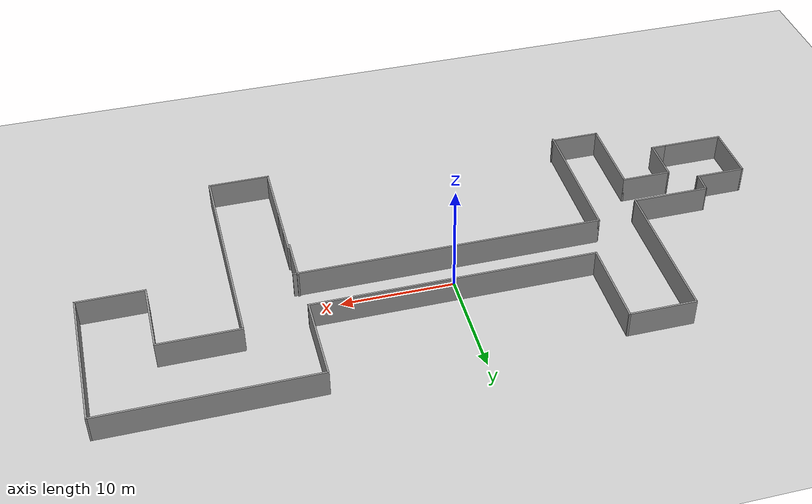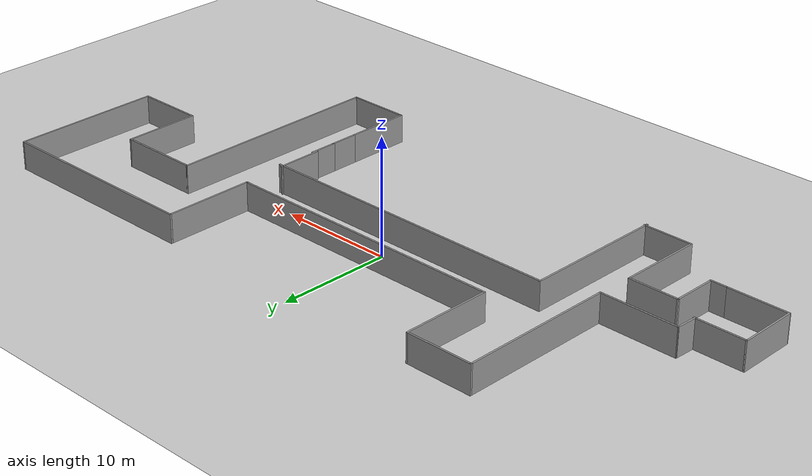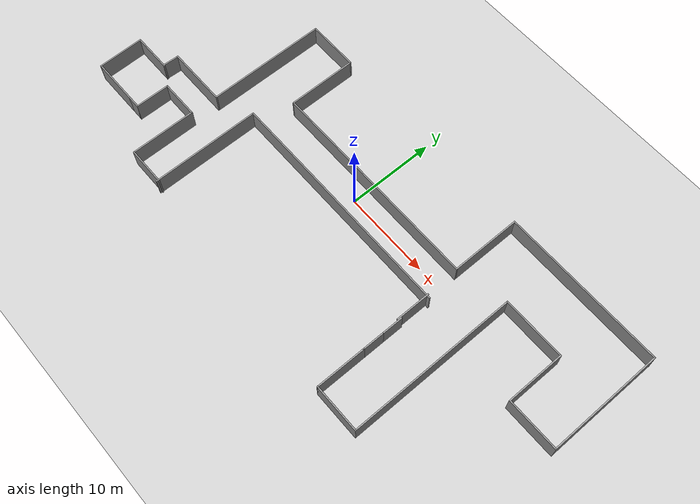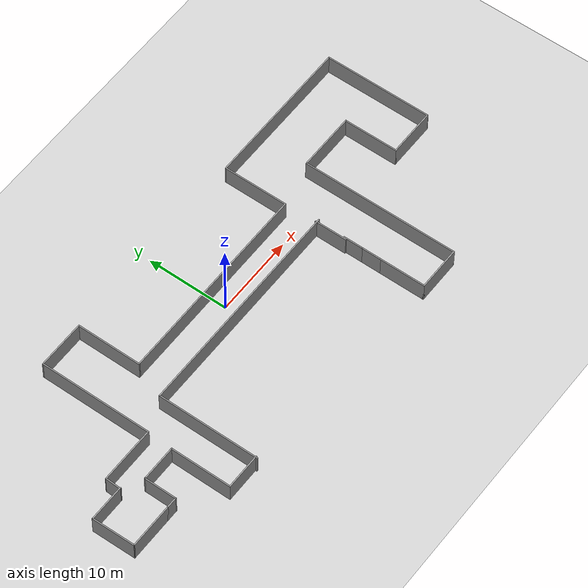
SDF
<sdf version="1.7">
 <world name="empty_world">
  <light name="sun" type="directional">
   <pose>0 0 10 0 -0 0</pose>
   <diffuse>0.8 0.8 0.8 1</diffuse>
   <specular>0.2 0.2 0.2 1</specular>
   <attenuation>
    <range>1000</range>
    <constant>0.9</constant>
    <linear>0.01</linear>
    <quadratic>0.001</quadratic>
   </attenuation>
   <direction>-0.5 0.1 -0.9</direction>
   <spot><inner_angle>0</inner_angle><outer_angle>0</outer_angle><falloff>0</falloff></spot>
  </light>
  <model name="ground_plane">
   <static>1</static>
   <link name="link">
    <collision name="collision">
     <geometry><plane><normal>0 0 1</normal><size>100 100</size></plane></geometry>
     <surface>
      <contact><collide_bitmask>65535</collide_bitmask></contact>
      <friction><ode><mu>100</mu><mu2>50</mu2></ode></friction>
     </surface>
    </collision>
    <visual name="visual">
     <cast_shadows>0</cast_shadows>
     <geometry><plane><normal>0 0 1</normal><size>100 100</size></plane></geometry>
     <material>
      <script><uri>file://media/materials/scripts/gazebo.material</uri><name>Gazebo/Grey</name></script>
     </material>
    </visual>
   </link>
  </model>
  <gravity>0 0 -9.8</gravity>
  <magnetic_field>6e-06 2.3e-05 -4.2e-05</magnetic_field>
  <atmosphere type="adiabatic"/>
  <physics type="ode">
   <max_step_size>0.001</max_step_size>
   <real_time_factor>1</real_time_factor>
   <real_time_update_rate>1000</real_time_update_rate>
  </physics>
  <scene><ambient>0.4 0.4 0.4 1</ambient><background>0.7 0.7 0.7 1</background><shadows>1</shadows></scene>
  <spherical_coordinates>
   <surface_model>EARTH_WGS84</surface_model>
   <latitude_deg>0</latitude_deg>
   <longitude_deg>0</longitude_deg>
   <elevation>0</elevation>
   <heading_deg>0</heading_deg>
  </spherical_coordinates>
  <model name="tacktry.world">
   <pose>1.17971 -3.02863 0 0 -0 0</pose>
   <link name="Wall_0">
    <collision name="Wall_0_Collision">
     <geometry><box><size>2.5 0.15 2.5</size></box></geometry>
     <pose>0 0 1.25 0 -0 0</pose>
    </collision>
    <visual name="Wall_0_Visual">
     <pose>0 0 1.25 0 -0 0</pose>
     <geometry><box><size>2.5 0.15 2.5</size></box></geometry>
     <material>
      <script><uri>file://media/materials/scripts/gazebo.material</uri><name>Gazebo/Grey</name></script>
      <ambient>1 1 1 1</ambient>
     </material>
     <meta><layer>0</layer></meta>
    </visual>
    <pose>12.1197 -3.675 0 0 -0 -1.5708</pose>
   </link>
   <link name="Wall_1">
    <collision name="Wall_1_Collision">
     <geometry><box><size>2.5 0.15 2.5</size></box></geometry>
     <pose>0 0 1.25 0 -0 0</pose>
    </collision>
    <visual name="Wall_1_Visual">
     <pose>0 0 1.25 0 -0 0</pose>
     <geometry><box><size>2.5 0.15 2.5</size></box></geometry>
     <material>
      <script><uri>file://media/materials/scripts/gazebo.material</uri><name>Gazebo/Grey</name></script>
      <ambient>1 1 1 1</ambient>
     </material>
     <meta><layer>0</layer></meta>
    </visual>
    <pose>12.1197 -6.025 0 0 -0 -1.5708</pose>
   </link>
   <link name="Wall_10">
    <collision name="Wall_10_Collision">
     <geometry><box><size>8 0.15 2.5</size></box></geometry>
     <pose>0 0 1.25 0 -0 0</pose>
    </collision>
    <visual name="Wall_10_Visual">
     <pose>0 0 1.25 0 -0 0</pose>
     <geometry><box><size>8 0.15 2.5</size></box></geometry>
     <material>
      <script><uri>file://media/materials/scripts/gazebo.material</uri><name>Gazebo/Grey</name></script>
      <ambient>1 1 1 1</ambient>
     </material>
     <meta><layer>0</layer></meta>
    </visual>
    <pose>11.8197 8.875 0 0 -0 -1.5708</pose>
   </link>
   <link name="Wall_11">
    <collision name="Wall_11_Collision">
     <geometry><box><size>25.25 0.15 2.5</size></box></geometry>
     <pose>0 0 1.25 0 -0 0</pose>
    </collision>
    <visual name="Wall_11_Visual">
     <pose>0 0 1.25 0 -0 0</pose>
     <geometry><box><size>25.25 0.15 2.5</size></box></geometry>
     <material>
      <script><uri>file://media/materials/scripts/gazebo.material</uri><name>Gazebo/Grey</name></script>
      <ambient>1 1 1 1</ambient>
     </material>
     <meta><layer>0</layer></meta>
    </visual>
    <pose>-0.730272 4.95 0 0 -0 3.14159</pose>
   </link>
   <link name="Wall_12">
    <collision name="Wall_12_Collision">
     <geometry><box><size>8 0.15 2.5</size></box></geometry>
     <pose>0 0 1.25 0 -0 0</pose>
    </collision>
    <visual name="Wall_12_Visual">
     <pose>0 0 1.25 0 -0 0</pose>
     <geometry><box><size>8 0.15 2.5</size></box></geometry>
     <material>
      <script><uri>file://media/materials/scripts/gazebo.material</uri><name>Gazebo/Grey</name></script>
      <ambient>1 1 1 1</ambient>
     </material>
     <meta><layer>0</layer></meta>
    </visual>
    <pose>-13.2803 8.875 0 0 -0 1.5708</pose>
   </link>
   <link name="Wall_13">
    <collision name="Wall_13_Collision">
     <geometry><box><size>6.01768 0.15 2.5</size></box></geometry>
     <pose>0 0 1.25 0 -0 0</pose>
    </collision>
    <visual name="Wall_13_Visual">
     <pose>0 0 1.25 0 -0 0</pose>
     <geometry><box><size>6.01768 0.15 2.5</size></box></geometry>
     <material>
      <script><uri>file://media/materials/scripts/gazebo.material</uri><name>Gazebo/Grey</name></script>
      <ambient>1 1 1 1</ambient>
     </material>
     <meta><layer>0</layer></meta>
    </visual>
    <pose>-16.2141 12.8 0 0 -0 3.14159</pose>
   </link>
   <link name="Wall_18">
    <collision name="Wall_18_Collision">
     <geometry><box><size>27.5 0.15 2.5</size></box></geometry>
     <pose>0 0 1.25 0 -0 0</pose>
    </collision>
    <visual name="Wall_18_Visual">
     <pose>0 0 1.25 0 -0 0</pose>
     <geometry><box><size>27.5 0.15 2.5</size></box></geometry>
     <material>
      <script><uri>file://media/materials/scripts/gazebo.material</uri><name>Gazebo/Grey</name></script>
      <ambient>1 1 1 1</ambient>
     </material>
     <meta><layer>0</layer></meta>
    </visual>
    <pose>-1.35527 0.917618 0 0 -0 0</pose>
   </link>
   <link name="Wall_2">
    <collision name="Wall_2_Collision">
     <geometry><box><size>5.75 0.15 2.5</size></box></geometry>
     <pose>0 0 1.25 0 -0 0</pose>
    </collision>
    <visual name="Wall_2_Visual">
     <pose>0 0 1.25 0 -0 0</pose>
     <geometry><box><size>5.75 0.15 2.5</size></box></geometry>
     <material>
      <script><uri>file://media/materials/scripts/gazebo.material</uri><name>Gazebo/Grey</name></script>
      <ambient>1 1 1 1</ambient>
     </material>
     <meta><layer>0</layer></meta>
    </visual>
    <pose>12.1197 -10 0 0 -0 -1.5708</pose>
   </link>
   <link name="Wall_20">
    <collision name="Wall_20_Collision">
     <geometry><box><size>13.75 0.15 2.5</size></box></geometry>
     <pose>0 0 1.25 0 -0 0</pose>
    </collision>
    <visual name="Wall_20_Visual">
     <pose>0 0 1.25 0 -0 0</pose>
     <geometry><box><size>13.75 0.15 2.5</size></box></geometry>
     <material>
      <script><uri>file://media/materials/scripts/gazebo.material</uri><name>Gazebo/Grey</name></script>
      <ambient>1 1 1 1</ambient>
     </material>
     <meta><layer>0</layer></meta>
    </visual>
    <pose>-19.1479 6 0 0 -0 -1.5708</pose>
   </link>
   <link name="Wall_21">
    <collision name="Wall_21_Collision">
     <geometry><box><size>7 0.15 2.5</size></box></geometry>
     <pose>0 0 1.25 0 -0 0</pose>
    </collision>
    <visual name="Wall_21_Visual">
     <pose>0 0 1.25 0 -0 0</pose>
     <geometry><box><size>7 0.15 2.5</size></box></geometry>
     <material>
      <script><uri>file://media/materials/scripts/gazebo.material</uri><name>Gazebo/Grey</name></script>
      <ambient>1 1 1 1</ambient>
     </material>
     <meta><layer>0</layer></meta>
    </visual>
    <pose>-22.5729 -0.8 0 0 -0 3.14159</pose>
   </link>
   <link name="Wall_22">
    <collision name="Wall_22_Collision">
     <geometry><box><size>1.95413 0.15 2.5</size></box></geometry>
     <pose>0 0 1.25 0 -0 0</pose>
    </collision>
    <visual name="Wall_22_Visual">
     <pose>0 0 1.25 0 -0 0</pose>
     <geometry><box><size>1.95413 0.15 2.5</size></box></geometry>
     <material>
      <script><uri>file://media/materials/scripts/gazebo.material</uri><name>Gazebo/Grey</name></script>
      <ambient>1 1 1 1</ambient>
     </material>
     <meta><layer>0</layer></meta>
    </visual>
    <pose>-26.0333 -1.70137 0 0 -0 -1.61003</pose>
   </link>
   <link name="Wall_23">
    <collision name="Wall_23_Collision">
     <geometry><box><size>4.5 0.15 2.5</size></box></geometry>
     <pose>0 0 1.25 0 -0 0</pose>
    </collision>
    <visual name="Wall_23_Visual">
     <pose>0 0 1.25 0 -0 0</pose>
     <geometry><box><size>4.5 0.15 2.5</size></box></geometry>
     <material>
      <script><uri>file://media/materials/scripts/gazebo.material</uri><name>Gazebo/Grey</name></script>
      <ambient>1 1 1 1</ambient>
     </material>
     <meta><layer>0</layer></meta>
    </visual>
    <pose>-28.173 -2.60275 0 0 -0 3.14159</pose>
   </link>
   <link name="Wall_24">
    <collision name="Wall_24_Collision">
     <geometry><box><size>5.29774 0.15 2.5</size></box></geometry>
     <pose>0 0 1.25 0 -0 0</pose>
    </collision>
    <visual name="Wall_24_Visual">
     <pose>0 0 1.25 0 -0 0</pose>
     <geometry><box><size>5.29774 0.15 2.5</size></box></geometry>
     <material>
      <script><uri>file://media/materials/scripts/gazebo.material</uri><name>Gazebo/Grey</name></script>
      <ambient>1 1 1 1</ambient>
     </material>
     <meta><layer>0</layer></meta>
    </visual>
    <pose>-30.3833 -5.17637 0 0 -0 -1.55705</pose>
   </link>
   <link name="Wall_25">
    <collision name="Wall_25_Collision">
     <geometry><box><size>5.5 0.15 2.5</size></box></geometry>
     <pose>0 0 1.25 0 -0 0</pose>
    </collision>
    <visual name="Wall_25_Visual">
     <pose>0 0 1.25 0 -0 0</pose>
     <geometry><box><size>5.5 0.15 2.5</size></box></geometry>
     <material>
      <script><uri>file://media/materials/scripts/gazebo.material</uri><name>Gazebo/Grey</name></script>
      <ambient>1 1 1 1</ambient>
     </material>
     <meta><layer>0</layer></meta>
    </visual>
    <pose>-27.673 -7.75 0 0 -0 0</pose>
   </link>
   <link name="Wall_26">
    <collision name="Wall_26_Collision">
     <geometry><box><size>1.5 0.15 2.5</size></box></geometry>
     <pose>0 0 1.25 0 -0 0</pose>
    </collision>
    <visual name="Wall_26_Visual">
     <pose>0 0 1.25 0 -0 0</pose>
     <geometry><box><size>1.5 0.15 2.5</size></box></geometry>
     <material>
      <script><uri>file://media/materials/scripts/gazebo.material</uri><name>Gazebo/Grey</name></script>
      <ambient>1 1 1 1</ambient>
     </material>
     <meta><layer>0</layer></meta>
    </visual>
    <pose>-24.3229 -7.75 0 0 -0 0</pose>
   </link>
   <link name="Wall_27">
    <collision name="Wall_27_Collision">
     <geometry><box><size>4 0.15 2.5</size></box></geometry>
     <pose>0 0 1.25 0 -0 0</pose>
    </collision>
    <visual name="Wall_27_Visual">
     <pose>0 0 1.25 0 -0 0</pose>
     <geometry><box><size>4 0.15 2.5</size></box></geometry>
     <material>
      <script><uri>file://media/materials/scripts/gazebo.material</uri><name>Gazebo/Grey</name></script>
      <ambient>1 1 1 1</ambient>
     </material>
     <meta><layer>0</layer></meta>
    </visual>
    <pose>-23.6479 -5.825 0 0 -0 1.5708</pose>
   </link>
   <link name="Wall_28">
    <collision name="Wall_28_Collision">
     <geometry><box><size>4.5 0.15 2.5</size></box></geometry>
     <pose>0 0 1.25 0 -0 0</pose>
    </collision>
    <visual name="Wall_28_Visual">
     <pose>0 0 1.25 0 -0 0</pose>
     <geometry><box><size>4.5 0.15 2.5</size></box></geometry>
     <material>
      <script><uri>file://media/materials/scripts/gazebo.material</uri><name>Gazebo/Grey</name></script>
      <ambient>1 1 1 1</ambient>
     </material>
     <meta><layer>0</layer></meta>
    </visual>
    <pose>-21.473 -3.9 0 0 -0 0</pose>
   </link>
   <link name="Wall_29">
    <collision name="Wall_29_Collision">
     <geometry><box><size>7.5 0.15 2.5</size></box></geometry>
     <pose>0 0 1.25 0 -0 0</pose>
    </collision>
    <visual name="Wall_29_Visual">
     <pose>0 0 1.25 0 -0 0</pose>
     <geometry><box><size>7.5 0.15 2.5</size></box></geometry>
     <material>
      <script><uri>file://media/materials/scripts/gazebo.material</uri><name>Gazebo/Grey</name></script>
      <ambient>1 1 1 1</ambient>
     </material>
     <meta><layer>0</layer></meta>
    </visual>
    <pose>-19.298 -7.575 0 0 -0 -1.5708</pose>
   </link>
   <link name="Wall_3">
    <collision name="Wall_3_Collision">
     <geometry><box><size>5.5 0.15 2.5</size></box></geometry>
     <pose>0 0 1.25 0 -0 0</pose>
    </collision>
    <visual name="Wall_3_Visual">
     <pose>0 0 1.25 0 -0 0</pose>
     <geometry><box><size>5.5 0.15 2.5</size></box></geometry>
     <material>
      <script><uri>file://media/materials/scripts/gazebo.material</uri><name>Gazebo/Grey</name></script>
      <ambient>1 1 1 1</ambient>
     </material>
     <meta><layer>0</layer></meta>
    </visual>
    <pose>14.7947 -12.8 0 0 -0 0</pose>
   </link>
   <link name="Wall_30">
    <collision name="Wall_30_Collision">
     <geometry><box><size>4.5 0.15 2.5</size></box></geometry>
     <pose>0 0 1.25 0 -0 0</pose>
    </collision>
    <visual name="Wall_30_Visual">
     <pose>0 0 1.25 0 -0 0</pose>
     <geometry><box><size>4.5 0.15 2.5</size></box></geometry>
     <material>
      <script><uri>file://media/materials/scripts/gazebo.material</uri><name>Gazebo/Grey</name></script>
      <ambient>1 1 1 1</ambient>
     </material>
     <meta><layer>0</layer></meta>
    </visual>
    <pose>-17.1229 -11.25 0 0 -0 0</pose>
   </link>
   <link name="Wall_32">
    <collision name="Wall_32_Collision">
     <geometry><box><size>12.5 0.15 2.5</size></box></geometry>
     <pose>0 0 1.25 0 -0 0</pose>
    </collision>
    <visual name="Wall_32_Visual">
     <pose>0 0 1.25 0 -0 0</pose>
     <geometry><box><size>12.5 0.15 2.5</size></box></geometry>
     <material>
      <script><uri>file://media/materials/scripts/gazebo.material</uri><name>Gazebo/Grey</name></script>
      <ambient>1 1 1 1</ambient>
     </material>
     <meta><layer>0</layer></meta>
    </visual>
    <pose>-15.0303 -5.25738 0 0 -0 -1.5708</pose>
   </link>
   <link name="Wall_34">
    <collision name="Wall_34_Collision">
     <geometry><box><size>4 0.15 2.5</size></box></geometry>
     <pose>0 0 1.25 0 -0 0</pose>
    </collision>
    <visual name="Wall_34_Visual">
     <pose>0 0 1.25 0 -0 0</pose>
     <geometry><box><size>4 0.15 2.5</size></box></geometry>
     <material>
      <script><uri>file://media/materials/scripts/gazebo.material</uri><name>Gazebo/Grey</name></script>
      <ambient>1 1 1 1</ambient>
     </material>
     <meta><layer>0</layer></meta>
    </visual>
    <pose>11.969 -0.883506 0 0 -0 1.5708</pose>
   </link>
   <link name="Wall_4">
    <collision name="Wall_4_Collision">
     <geometry><box><size>19.25 0.15 2.5</size></box></geometry>
     <pose>0 0 1.25 0 -0 0</pose>
    </collision>
    <visual name="Wall_4_Visual">
     <pose>0 0 1.25 0 -0 0</pose>
     <geometry><box><size>19.25 0.15 2.5</size></box></geometry>
     <material>
      <script><uri>file://media/materials/scripts/gazebo.material</uri><name>Gazebo/Grey</name></script>
      <ambient>1 1 1 1</ambient>
     </material>
     <meta><layer>0</layer></meta>
    </visual>
    <pose>17.4697 -3.25 0 0 -0 1.5708</pose>
   </link>
   <link name="Wall_5">
    <collision name="Wall_5_Collision">
     <geometry><box><size>7.25 0.15 2.5</size></box></geometry>
     <pose>0 0 1.25 0 -0 0</pose>
    </collision>
    <visual name="Wall_5_Visual">
     <pose>0 0 1.25 0 -0 0</pose>
     <geometry><box><size>7.25 0.15 2.5</size></box></geometry>
     <material>
      <script><uri>file://media/materials/scripts/gazebo.material</uri><name>Gazebo/Grey</name></script>
      <ambient>1 1 1 1</ambient>
     </material>
     <meta><layer>0</layer></meta>
    </visual>
    <pose>21.0197 6.3 0 0 -0 0</pose>
   </link>
   <link name="Wall_6">
    <collision name="Wall_6_Collision">
     <geometry><box><size>6.75 0.15 2.5</size></box></geometry>
     <pose>0 0 1.25 0 -0 0</pose>
    </collision>
    <visual name="Wall_6_Visual">
     <pose>0 0 1.25 0 -0 0</pose>
     <geometry><box><size>6.75 0.15 2.5</size></box></geometry>
     <material>
      <script><uri>file://media/materials/scripts/gazebo.material</uri><name>Gazebo/Grey</name></script>
      <ambient>1 1 1 1</ambient>
     </material>
     <meta><layer>0</layer></meta>
    </visual>
    <pose>24.5697 3 0 0 -0 -1.5708</pose>
   </link>
   <link name="Wall_7">
    <collision name="Wall_7_Collision">
     <geometry><box><size>6 0.15 2.5</size></box></geometry>
     <pose>0 0 1.25 0 -0 0</pose>
    </collision>
    <visual name="Wall_7_Visual">
     <pose>0 0 1.25 0 -0 0</pose>
     <geometry><box><size>6 0.15 2.5</size></box></geometry>
     <material>
      <script><uri>file://media/materials/scripts/gazebo.material</uri><name>Gazebo/Grey</name></script>
      <ambient>1 1 1 1</ambient>
     </material>
     <meta><layer>0</layer></meta>
    </visual>
    <pose>27.4947 -0.3 0 0 -0 0</pose>
   </link>
   <link name="Wall_8">
    <collision name="Wall_8_Collision">
     <geometry><box><size>13.25 0.15 2.5</size></box></geometry>
     <pose>0 0 1.25 0 -0 0</pose>
    </collision>
    <visual name="Wall_8_Visual">
     <pose>0 0 1.25 0 -0 0</pose>
     <geometry><box><size>13.25 0.15 2.5</size></box></geometry>
     <material>
      <script><uri>file://media/materials/scripts/gazebo.material</uri><name>Gazebo/Grey</name></script>
      <ambient>1 1 1 1</ambient>
     </material>
     <meta><layer>0</layer></meta>
    </visual>
    <pose>30.4197 6.25 0 0 -0 1.5708</pose>
   </link>
   <link name="Wall_9">
    <collision name="Wall_9_Collision">
     <geometry><box><size>18.75 0.15 2.5</size></box></geometry>
     <pose>0 0 1.25 0 -0 0</pose>
    </collision>
    <visual name="Wall_9_Visual">
     <pose>0 0 1.25 0 -0 0</pose>
     <geometry><box><size>18.75 0.15 2.5</size></box></geometry>
     <material>
      <script><uri>file://media/materials/scripts/gazebo.material</uri><name>Gazebo/Grey</name></script>
      <ambient>1 1 1 1</ambient>
     </material>
     <meta><layer>0</layer></meta>
    </visual>
    <pose>21.1197 12.8 0 0 -0 3.14159</pose>
   </link>
   <static>1</static>
  </model>
 </world>
</sdf>
